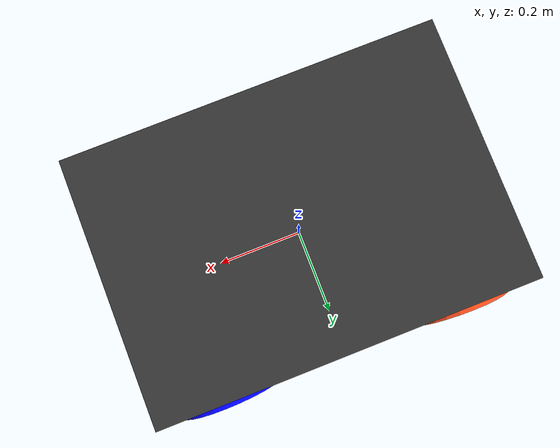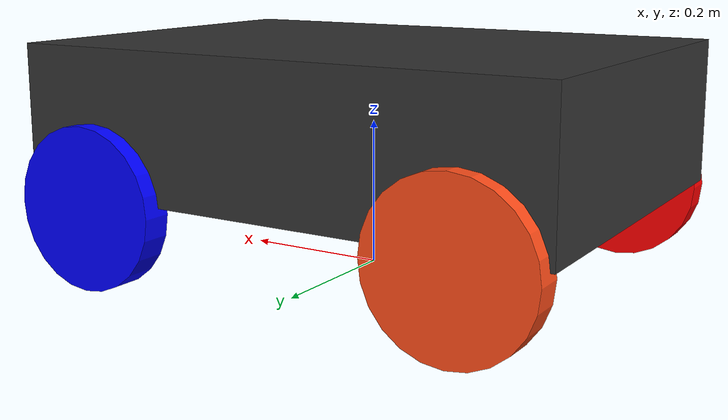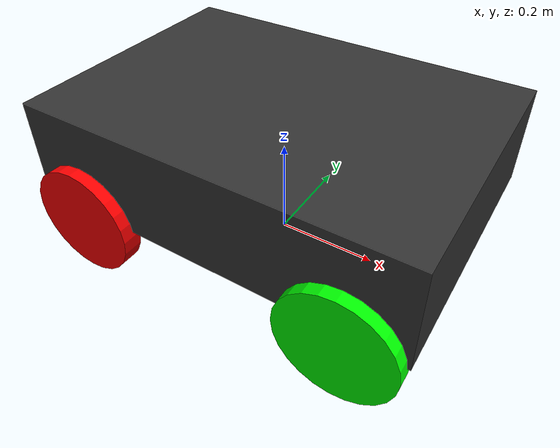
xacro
<?xml version="1.0"?>
<robot name="saltbot" xmlns:xacro="http://ros.org/wiki/xacro">

    <xacro:include filename="additional_files/materials.xacro" />

    <link name="base_footprint"/>

    <joint name="base_joint" type="fixed">
        <parent link="base_footprint"/>
        <child link="base_link" />
        <origin xyz="0 0 0" rpy="0 0 0"/>
    </joint>

    <link name="base_link">
        <visual>
            <origin xyz="0 0 .21" rpy="0 0 0"/>
            <geometry>
                <box size=".762 .5334 .2"/>
            </geometry>
            <material name="grey"/>
        </visual>

        <collision>
            <origin xyz="0 0 0.21" rpy="0 0 0"/>
            <geometry>
                <box size=".762 .5334 .2"/>
            </geometry>
        </collision>
    </link>

    <joint name="BRwheel_joint" type="continuous">
        <parent link="base_link"/>
        <child link="BRwheel_link"/>
        <origin xyz="-.2667 -0.271 .1" rpy="-1.57 0 0"/>
        <axis xyz="0 0 1"/>
    </joint>

    <link name="BRwheel_link">
        <visual>
            <origin xyz="0 0 0" rpy="0 0 1.57"/>
            <geometry>
                <cylinder length="0.04" radius="0.11"/>
            </geometry>
            <material name="red"/>
        </visual>

        <collision>
            <origin xyz="0 0 0" rpy="0 0 1.57"/>
            <geometry>
                <cylinder length="0.04" radius="0.11"/>
            </geometry>
        </collision>
    </link>

    <joint name="FRwheel_joint" type="continuous">
        <parent link="base_link"/>
        <child link="FRwheel_link"/>
        <origin xyz=".2667 -0.271 .1" rpy="-1.57 0 0"/>
        <axis xyz="0 0 1"/>
    </joint>

    <link name="FRwheel_link">
        <visual>
            <origin xyz="0 0 0" rpy="0 0 1.57"/>
            <geometry>
                <cylinder length="0.04" radius="0.11"/>
            </geometry>
            <material name="green"/>
        </visual>

        <collision>
            <origin xyz="0 0 0" rpy="0 0 1.57"/>
            <geometry>
                <cylinder length="0.04" radius="0.11"/>
            </geometry>
        </collision>
    </link>

    <joint name="BLwheel_joint" type="continuous">
        <parent link="base_link"/>
        <child link="BLwheel_link"/>
        <origin xyz="-.2667 0.271 .1" rpy="-1.57 0 0"/>
        <axis xyz="0 0 1"/>
    </joint>

    <link name="BLwheel_link">
        <visual>
            <origin xyz="0 0 0" rpy="0 0 1.57"/>
            <geometry>
                <cylinder length="0.04" radius="0.11"/>
            </geometry>
            <material name="orange"/>
        </visual>

        <collision>
            <origin xyz="0 0 0" rpy="0 0 1.57"/>
            <geometry>
                <cylinder length="0.04" radius="0.11"/>
            </geometry>
        </collision>
    </link>

    <joint name="FLwheel_joint" type="continuous">
        <parent link="base_link"/>
        <child link="FLwheel_link"/>
        <origin xyz=".2667 0.271 .1" rpy="-1.57 0 0"/>
        <axis xyz="0 0 1"/>
    </joint>

    <link name="FLwheel_link">
        <visual>
            <origin xyz="0 0 0" rpy="0 0 1.57"/>
            <geometry>
                <cylinder length="0.04" radius="0.11"/>
            </geometry>
            <material name="blue"/>
        </visual>

        <collision>
            <origin xyz="0 0 0" rpy="0 0 1.57"/>
            <geometry>
                <cylinder length="0.04" radius="0.11"/>
            </geometry>
        </collision>
    </link>

</robot>

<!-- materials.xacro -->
<robot xmlns:xacro="http://www.ros.org/wiki/xacro">

    <material name="grey">
        <color rgba="0.2 0.2 0.2 1"/>
    </material>

    <material name="white">
        <color rgba="1 1 1 1"/>
    </material>

    <material name="orange">
        <color rgba="1 0.3 0.1 1"/>
    </material>

    <material name="blue">
        <color rgba="0 0 1 1"/>
    </material>

    <material name="red">
        <color rgba="1 0 0 1"/>
    </material>

    <material name="green">
        <color rgba="0 1 0 1"/>
    </material>

</robot>
